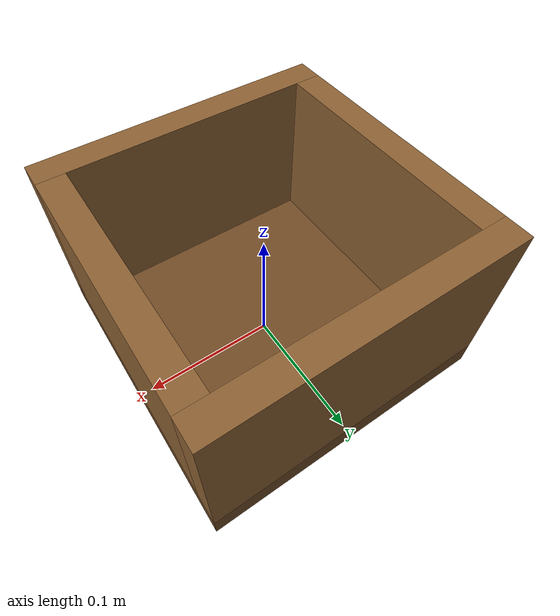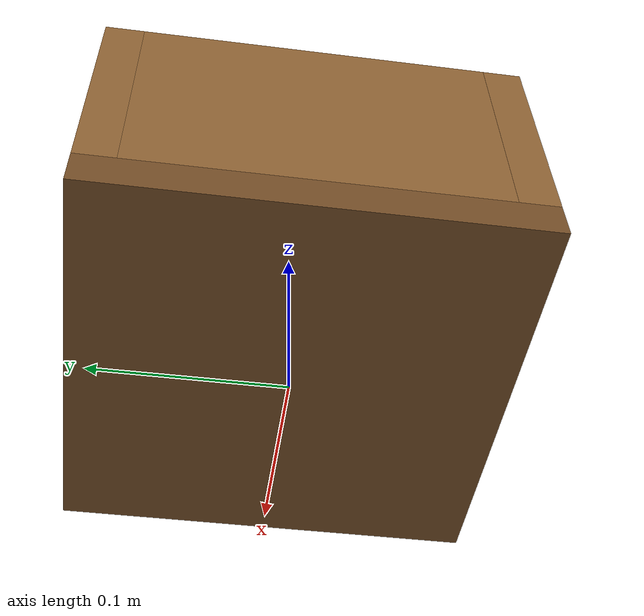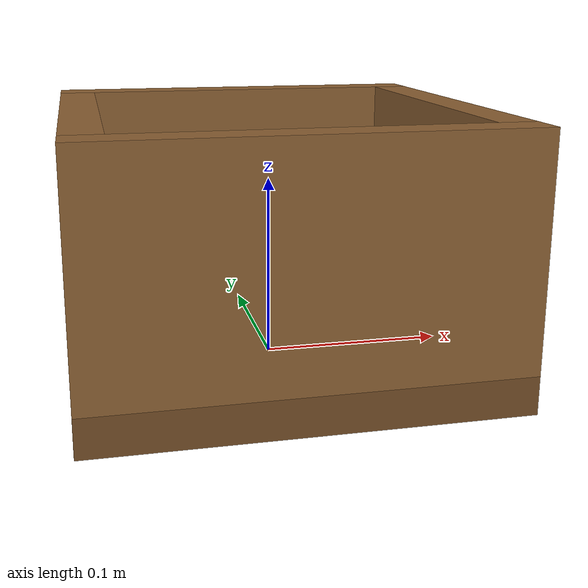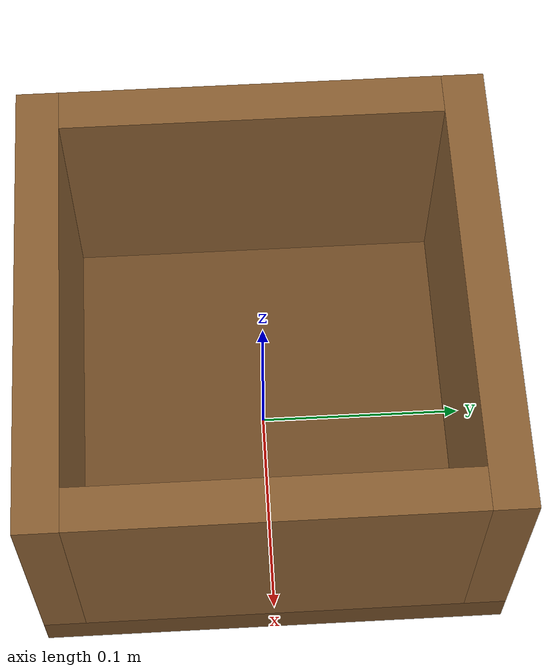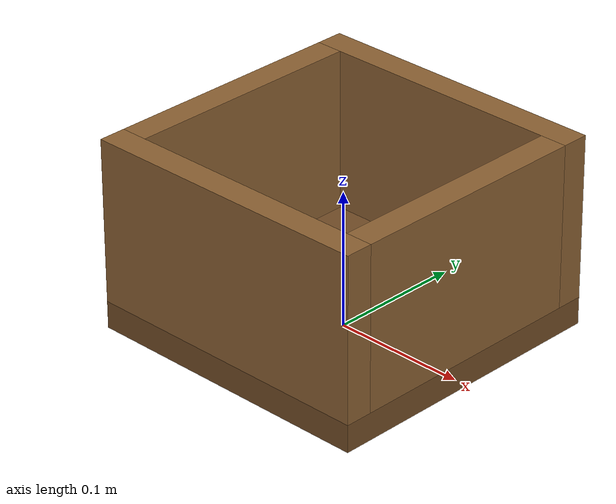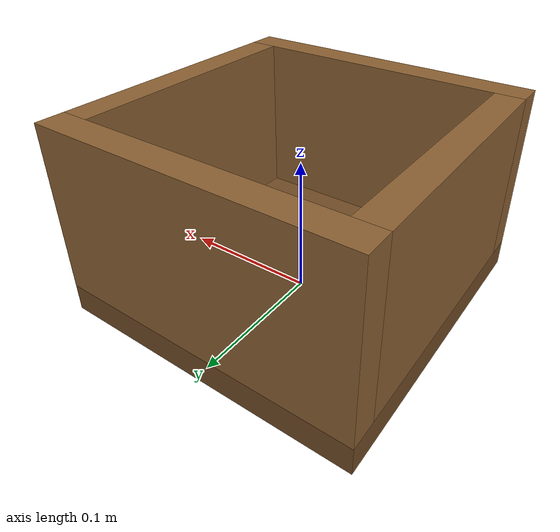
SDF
<?xml version="1.0" ?>
<sdf version="1.7">
  <model name="crate">
    <static>true</static>
    <pose>0 0 0 0 0 0</pose>
    <link name="link">
      <collision name="floor_collision">
        <pose>0 0 0.01 0 0 0</pose>
        <geometry><box><size>0.22 0.22 0.02</size></box></geometry>
        <surface>
          <friction><ode><mu>0.8</mu><mu2>0.8</mu2></ode></friction>
        </surface>
      </collision>
      <visual name="floor_visual">
        <pose>0 0 0.01 0 0 0</pose>
        <geometry><box><size>0.22 0.22 0.02</size></box></geometry>
        <material>
          <ambient>0.45 0.30 0.15 1</ambient>
          <diffuse>0.45 0.30 0.15 1</diffuse>
        </material>
      </visual>

      <collision name="wall_front_collision">
        <pose>0 0.10 0.08 0 0 0</pose>
        <geometry><box><size>0.22 0.02 0.12</size></box></geometry>
      </collision>
      <visual name="wall_front_visual">
        <pose>0 0.10 0.08 0 0 0</pose>
        <geometry><box><size>0.22 0.02 0.12</size></box></geometry>
        <material>
          <ambient>0.55 0.38 0.20 1</ambient>
          <diffuse>0.55 0.38 0.20 1</diffuse>
        </material>
      </visual>

      <collision name="wall_back_collision">
        <pose>0 -0.10 0.08 0 0 0</pose>
        <geometry><box><size>0.22 0.02 0.12</size></box></geometry>
      </collision>
      <visual name="wall_back_visual">
        <pose>0 -0.10 0.08 0 0 0</pose>
        <geometry><box><size>0.22 0.02 0.12</size></box></geometry>
        <material>
          <ambient>0.55 0.38 0.20 1</ambient>
          <diffuse>0.55 0.38 0.20 1</diffuse>
        </material>
      </visual>

      <collision name="wall_left_collision">
        <pose>0.10 0 0.08 0 0 0</pose>
        <geometry><box><size>0.02 0.18 0.12</size></box></geometry>
      </collision>
      <visual name="wall_left_visual">
        <pose>0.10 0 0.08 0 0 0</pose>
        <geometry><box><size>0.02 0.18 0.12</size></box></geometry>
        <material>
          <ambient>0.55 0.38 0.20 1</ambient>
          <diffuse>0.55 0.38 0.20 1</diffuse>
        </material>
      </visual>

      <collision name="wall_right_collision">
        <pose>-0.10 0 0.08 0 0 0</pose>
        <geometry><box><size>0.02 0.18 0.12</size></box></geometry>
      </collision>
      <visual name="wall_right_visual">
        <pose>-0.10 0 0.08 0 0 0</pose>
        <geometry><box><size>0.02 0.18 0.12</size></box></geometry>
        <material>
          <ambient>0.55 0.38 0.20 1</ambient>
          <diffuse>0.55 0.38 0.20 1</diffuse>
        </material>
      </visual>
    </link>
  </model>
</sdf>
